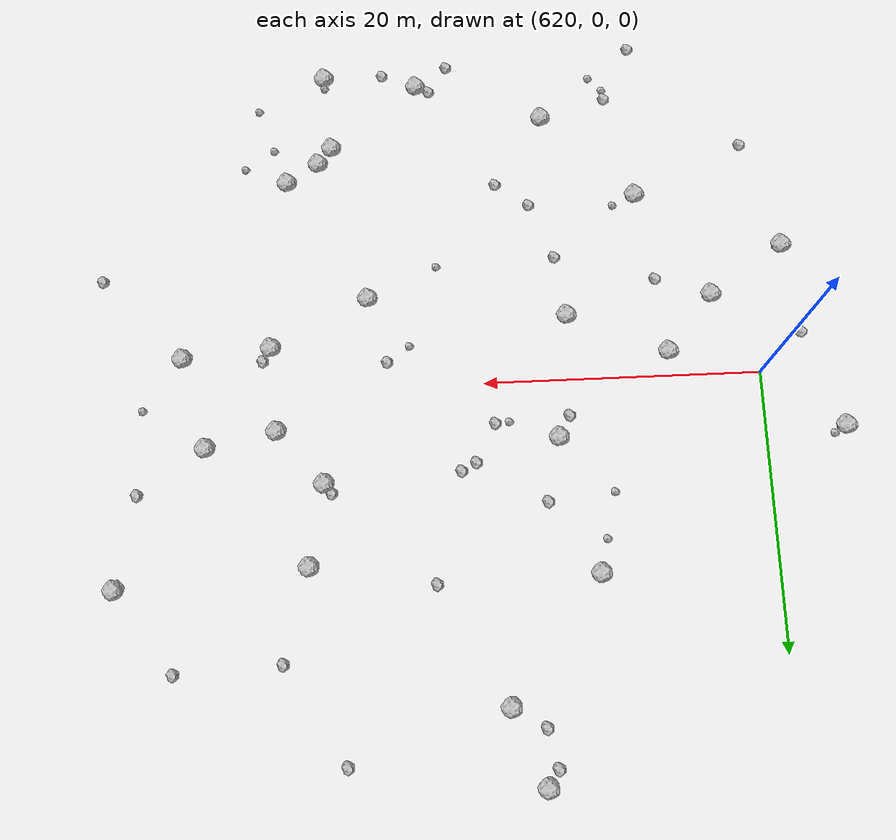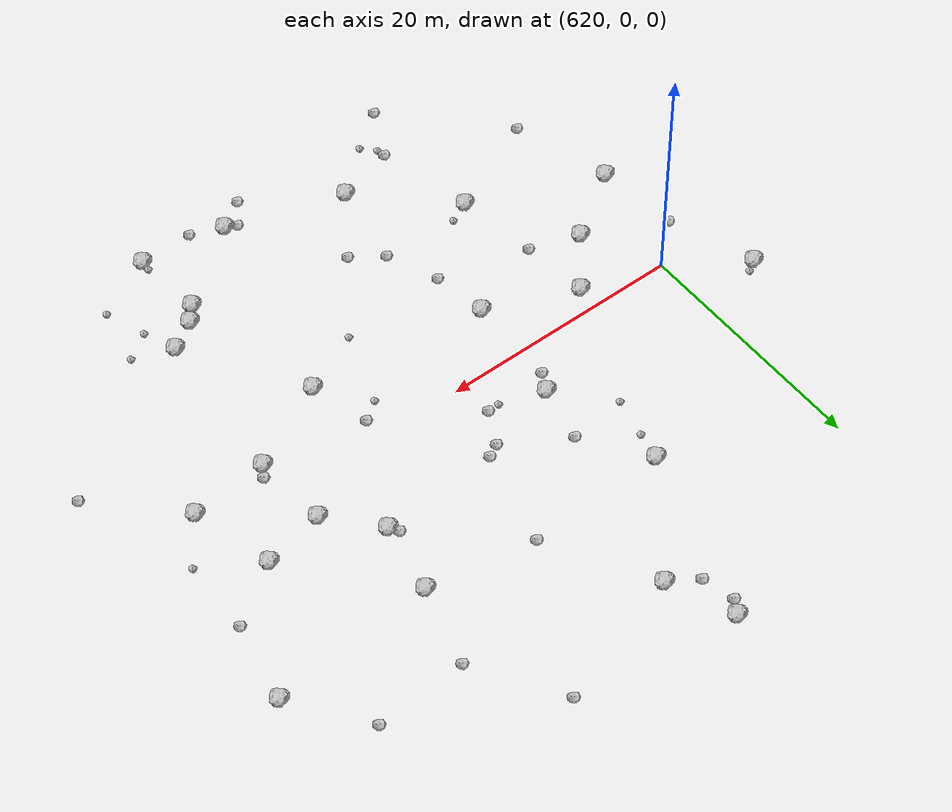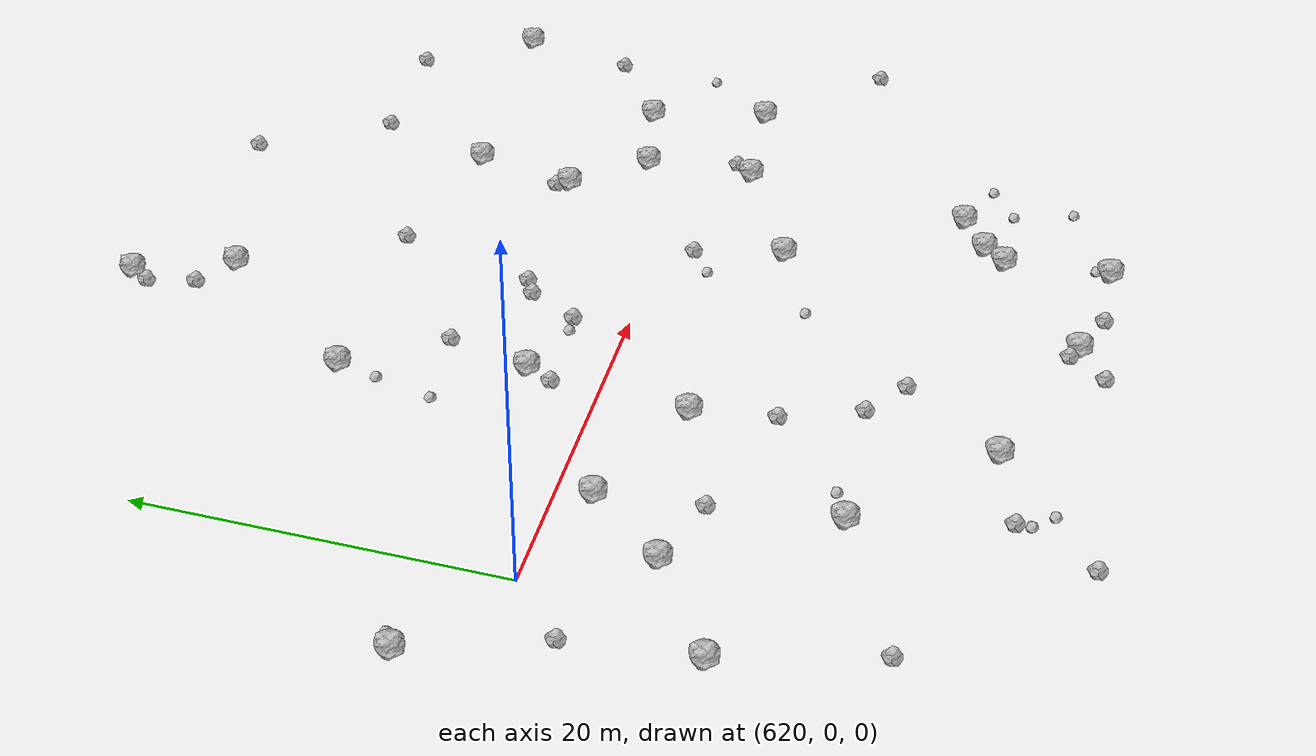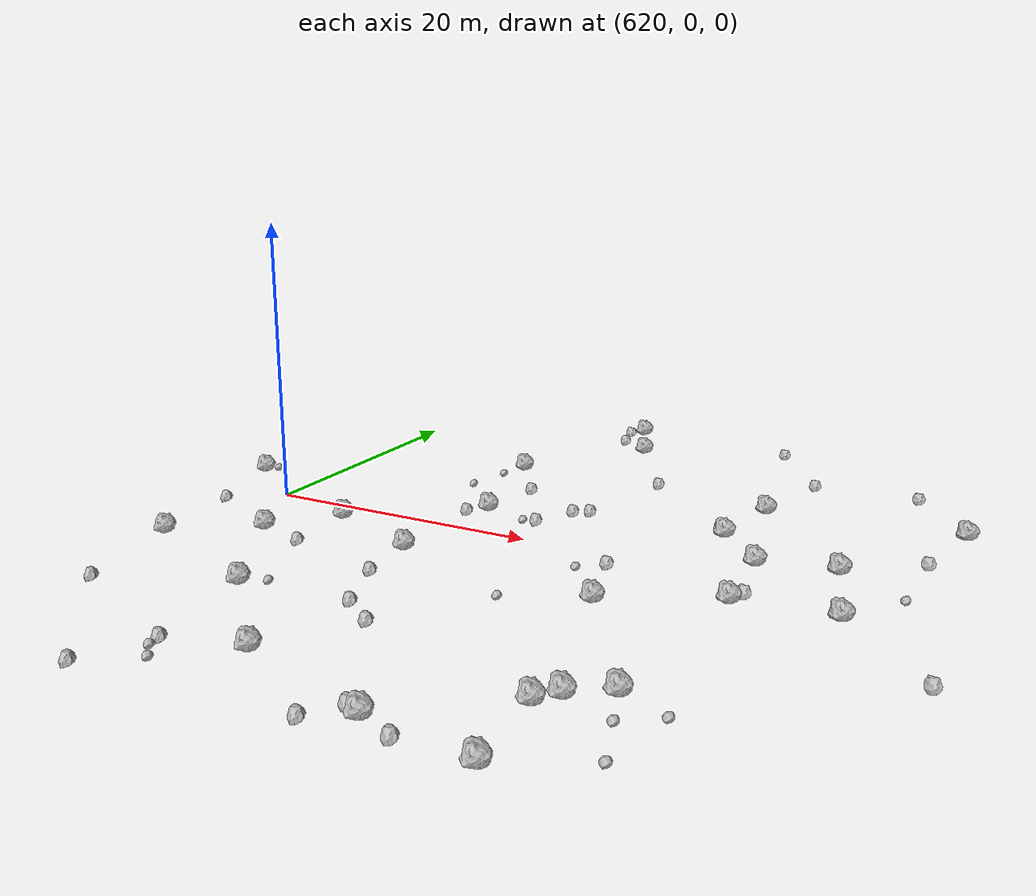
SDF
<sdf version="1.6">
 <world name="default">
  <include><uri>model://sun</uri></include>
  <model name="rock1_16_3">
   <include><uri>model://rock1</uri><pose>617.6465627424924 -9.709897192629732 0.5 0 0 0</pose></include>
  </model>
  <model name="rock1_16_4">
   <include><uri>model://rock1</uri><pose>650.7536036418405 -18.777845437570093 0.5 0 0 0</pose></include>
  </model>
  <model name="rock1_16_5">
   <include><uri>model://rock1</uri><pose>651.5959190776214 6.9281080857251425 0.5 0 0 0</pose></include>
  </model>
  <model name="rock1_16_6">
   <include><uri>model://rock1</uri><pose>644.2715476833292 -23.663114642924377 0.5 0 0 0</pose></include>
  </model>
  <model name="rock1_16_7">
   <include><uri>model://rock1</uri><pose>614.373548538521 4.1368437598148375 0.5 0 0 0</pose></include>
  </model>
  <model name="rock1_16_8">
   <include><uri>model://rock1</uri><pose>648.2651307663469 -6.704788335727091 0.5 0 0 0</pose></include>
  </model>
  <model name="rock1_16_9">
   <include><uri>model://rock1</uri><pose>654.1253480510939 -16.066587387312293 0.5 0 0 0</pose></include>
  </model>
  <model name="rock1_16_10">
   <include><uri>model://rock1</uri><pose>660.0006475566688 4.058775915674396 0.5 0 0 0</pose></include>
  </model>
  <model name="rock1_16_11">
   <include><uri>model://rock1</uri><pose>623.1522523399311 -6.062627634390552 0.5 0 0 0</pose></include>
  </model>
  <model name="rock1_16_12">
   <include><uri>model://rock1</uri><pose>654.9541138660998 3.009556311857274 0.5 0 0 0</pose></include>
  </model>
  <model name="rock1_16_13">
   <include><uri>model://rock1</uri><pose>634.8472784441851 -20.676308100312244 0.5 0 0 0</pose></include>
  </model>
  <model name="rock1_16_14">
   <include><uri>model://rock1</uri><pose>661.7213017447226 -2.6145162821123797 0.5 0 0 0</pose></include>
  </model>
  <model name="rock1_16_15">
   <include><uri>model://rock1</uri><pose>632.4803514371363 13.931083566033692 0.5 0 0 0</pose></include>
  </model>
  <model name="rock1_16_16">
   <include><uri>model://rock1</uri><pose>634.8515142003507 4.207418807250015 0.5 0 0 0</pose></include>
  </model>
  <model name="rock1_16_17">
   <include><uri>model://rock1</uri><pose>626.5892291187288 -1.8539834037327942 0.5 0 0 0</pose></include>
  </model>
  <model name="rock1_16_18">
   <include><uri>model://rock1</uri><pose>639.1376466350586 22.68909611212262 0.5 0 0 0</pose></include>
  </model>
  <model name="rock1_16_19">
   <include><uri>model://rock1</uri><pose>655.3429677508877 -3.1964582324145923 0.5 0 0 0</pose></include>
  </model>
  <model name="rock1_16_20">
   <include><uri>model://rock1</uri><pose>636.9497265139415 27.963943023277714 0.5 0 0 0</pose></include>
  </model>
  <model name="rock1_16_21">
   <include><uri>model://rock1</uri><pose>651.2502026935972 -24.629211143362646 0.5 0 0 0</pose></include>
  </model>
  <model name="rock1_16_22">
   <include><uri>model://rock1</uri><pose>651.7900142246577 -17.533795040815104 0.5 0 0 0</pose></include>
  </model>
  <model name="rock1_16_23">
   <include><uri>model://rock1</uri><pose>633.7999333551764 -4.862839958891545 0.5 0 0 0</pose></include>
  </model>
  <model name="rock1_16_24">
   <include><uri>model://rock1</uri><pose>666.1610733523352 13.801346857646607 0.5 0 0 0</pose></include>
  </model>
  <model name="rock1_16_25">
   <include><uri>model://rock1</uri><pose>628.1682536387101 -14.110672156202002 0.5 0 0 0</pose></include>
  </model>
  <model name="rock1_16_26">
   <include><uri>model://rock1</uri><pose>652.7025147971209 12.729496106284444 0.5 0 0 0</pose></include>
  </model>
  <model name="rock2_16_0">
   <include><uri>model://rock2</uri><pose>664.7604666636762 7.257304565538604 0.3 0 0 0</pose></include>
  </model>
  <model name="rock2_16_1">
   <include><uri>model://rock2</uri><pose>638.5456971612612 -15.349214095609609 0.3 0 0 0</pose></include>
  </model>
  <model name="rock2_16_2">
   <include><uri>model://rock2</uri><pose>655.9290034729057 -2.201970897461898 0.3 0 0 0</pose></include>
  </model>
  <model name="rock2_16_3">
   <include><uri>model://rock2</uri><pose>641.8996350399932 -25.24358410607914 0.3 0 0 0</pose></include>
  </model>
  <model name="rock2_16_4">
   <include><uri>model://rock2</uri><pose>650.1834920694712 26.167864067891948 0.3 0 0 0</pose></include>
  </model>
  <model name="rock2_16_5">
   <include><uri>model://rock2</uri><pose>635.852643478413 8.835939490818532 0.3 0 0 0</pose></include>
  </model>
  <model name="rock2_16_6">
   <include><uri>model://rock2</uri><pose>627.8180712497099 -26.248857699451257 0.3 0 0 0</pose></include>
  </model>
  <model name="rock2_16_7">
   <include><uri>model://rock2</uri><pose>636.1124362687654 -13.605677535968756 0.3 0 0 0</pose></include>
  </model>
  <model name="rock2_16_8">
   <include><uri>model://rock2</uri><pose>636.7954756371346 24.150447045600295 0.3 0 0 0</pose></include>
  </model>
  <model name="rock2_16_9">
   <include><uri>model://rock2</uri><pose>629.9212231101197 -22.092165486065184 0.3 0 0 0</pose></include>
  </model>
  <model name="rock2_16_10">
   <include><uri>model://rock2</uri><pose>641.8584039806625 6.408824970529153 0.3 0 0 0</pose></include>
  </model>
  <model name="rock2_16_11">
   <include><uri>model://rock2</uri><pose>667.6404477619168 -8.756045018135588 0.3 0 0 0</pose></include>
  </model>
  <model name="rock2_16_12">
   <include><uri>model://rock2</uri><pose>661.9857060859555 19.679246348726622 0.3 0 0 0</pose></include>
  </model>
  <model name="rock2_16_13">
   <include><uri>model://rock2</uri><pose>654.4956653797312 19.28939161570797 0.3 0 0 0</pose></include>
  </model>
  <model name="rock2_16_14">
   <include><uri>model://rock2</uri><pose>640.7957854311904 5.836593875537368 0.3 0 0 0</pose></include>
  </model>
  <model name="rock2_16_15">
   <include><uri>model://rock2</uri><pose>616.8101042772587 -2.932963582339596 0.3 0 0 0</pose></include>
  </model>
  <model name="rock2_16_16">
   <include><uri>model://rock2</uri><pose>636.1609948802271 26.817704840146455 0.3 0 0 0</pose></include>
  </model>
  <model name="rock2_16_17">
   <include><uri>model://rock2</uri><pose>634.4230868446118 -9.37890257507889 0.3 0 0 0</pose></include>
  </model>
  <model name="rock2_16_18">
   <include><uri>model://rock2</uri><pose>651.055742270463 7.640927335559375 0.3 0 0 0</pose></include>
  </model>
  <model name="rock2_16_19">
   <include><uri>model://rock2</uri><pose>643.2891978409687 -23.236517767932828 0.3 0 0 0</pose></include>
  </model>
  <model name="rock2_16_20">
   <include><uri>model://rock2</uri><pose>633.981006877679 2.671744910141868 0.3 0 0 0</pose></include>
  </model>
  <model name="rock2_16_21">
   <include><uri>model://rock2</uri><pose>627.1098625205216 -7.3987956054453825 0.3 0 0 0</pose></include>
  </model>
  <model name="rock2_16_22">
   <include><uri>model://rock2</uri><pose>646.9348046741067 -1.7965834519383925 0.3 0 0 0</pose></include>
  </model>
  <model name="rock2_16_23">
   <include><uri>model://rock2</uri><pose>619.8962081482862 -17.855027791086172 0.3 0 0 0</pose></include>
  </model>
  <model name="rock2_16_24">
   <include><uri>model://rock2</uri><pose>643.8444497787312 14.301401143254104 0.3 0 0 0</pose></include>
  </model>
  <model name="rock2_16_25">
   <include><uri>model://rock2</uri><pose>639.3361773809764 3.0460661221023884 0.3 0 0 0</pose></include>
  </model>
  <model name="rock2_16_26">
   <include><uri>model://rock2</uri><pose>646.8104074619475 -24.73040427851947 0.3 0 0 0</pose></include>
  </model>
  <model name="rock3_16_0">
   <include><uri>model://rock3</uri><pose>657.217554989734 -17.383148823295645 0.2 0 0 0</pose></include>
  </model>
  <model name="rock3_16_1">
   <include><uri>model://rock3</uri><pose>638.3035243070517 2.917243115211278 0.2 0 0 0</pose></include>
  </model>
  <model name="rock3_16_2">
   <include><uri>model://rock3</uri><pose>643.1576782960391 -9.032845124832775 0.2 0 0 0</pose></include>
  </model>
  <model name="rock3_16_3">
   <include><uri>model://rock3</uri><pose>651.2035293310562 -23.903057387280313 0.2 0 0 0</pose></include>
  </model>
  <model name="rock3_16_4">
   <include><uri>model://rock3</uri><pose>664.4937713198641 1.107324744031203 0.2 0 0 0</pose></include>
  </model>
  <model name="rock3_16_5">
   <include><uri>model://rock3</uri><pose>656.1994809535654 -22.138681462694535 0.2 0 0 0</pose></include>
  </model>
  <model name="rock3_16_6">
   <include><uri>model://rock3</uri><pose>615.1540398531896 4.655810591196399 0.2 0 0 0</pose></include>
  </model>
  <model name="rock3_16_7">
   <include><uri>model://rock3</uri><pose>645.2831869142318 -2.9998972991802084 0.2 0 0 0</pose></include>
  </model>
  <model name="rock3_16_8">
   <include><uri>model://rock3</uri><pose>630.968569607334 -23.963752597509544 0.2 0 0 0</pose></include>
  </model>
  <model name="rock3_16_9">
   <include><uri>model://rock3</uri><pose>655.0559689958737 -18.83026881807465 0.2 0 0 0</pose></include>
  </model>
  <model name="rock3_16_10">
   <include><uri>model://rock3</uri><pose>629.7976975976402 -13.397417715891187 0.2 0 0 0</pose></include>
  </model>
  <model name="rock3_16_11">
   <include><uri>model://rock3</uri><pose>629.9901228184594 -22.931969746388738 0.2 0 0 0</pose></include>
  </model>
  <model name="rock3_16_12">
   <include><uri>model://rock3</uri><pose>631.8533799570997 11.557810378464417 0.2 0 0 0</pose></include>
  </model>
  <model name="rock3_16_13">
   <include><uri>model://rock3</uri><pose>631.0898714687959 8.263895165085835 0.2 0 0 0</pose></include>
  </model>
 </world>
</sdf>
